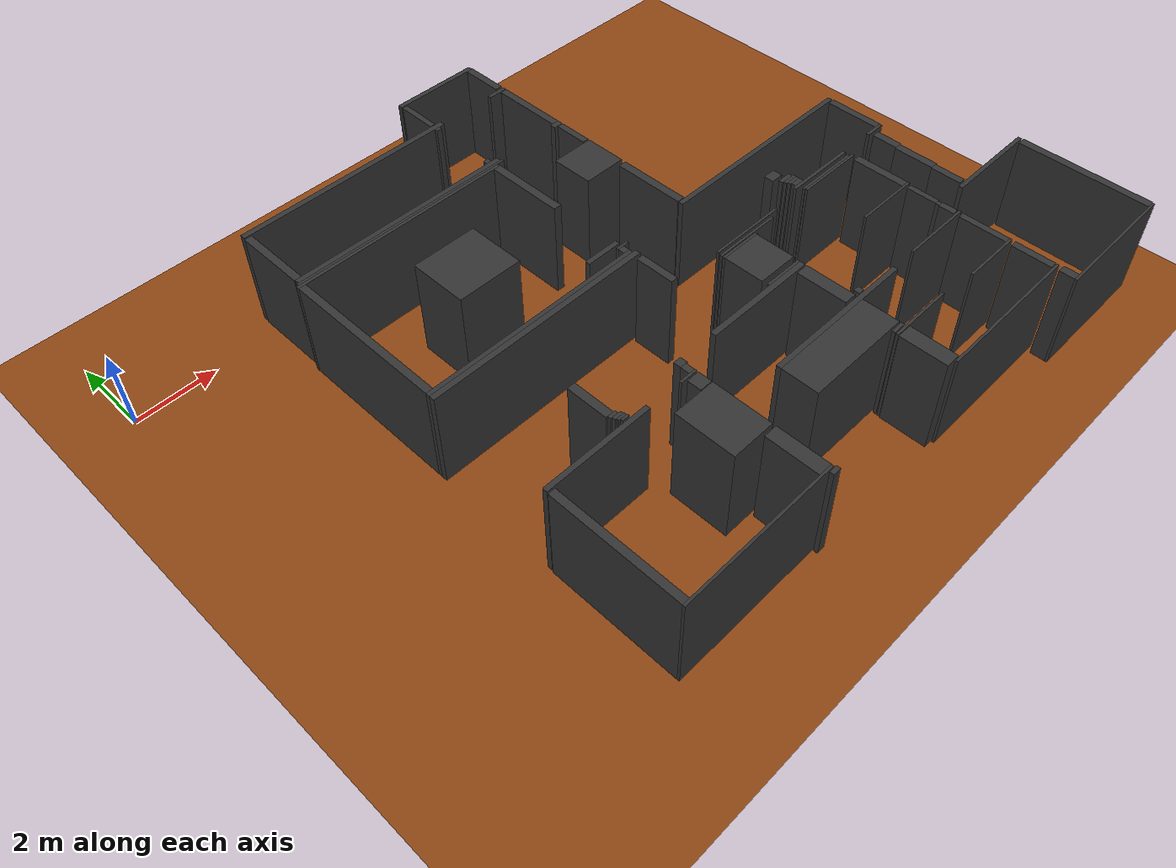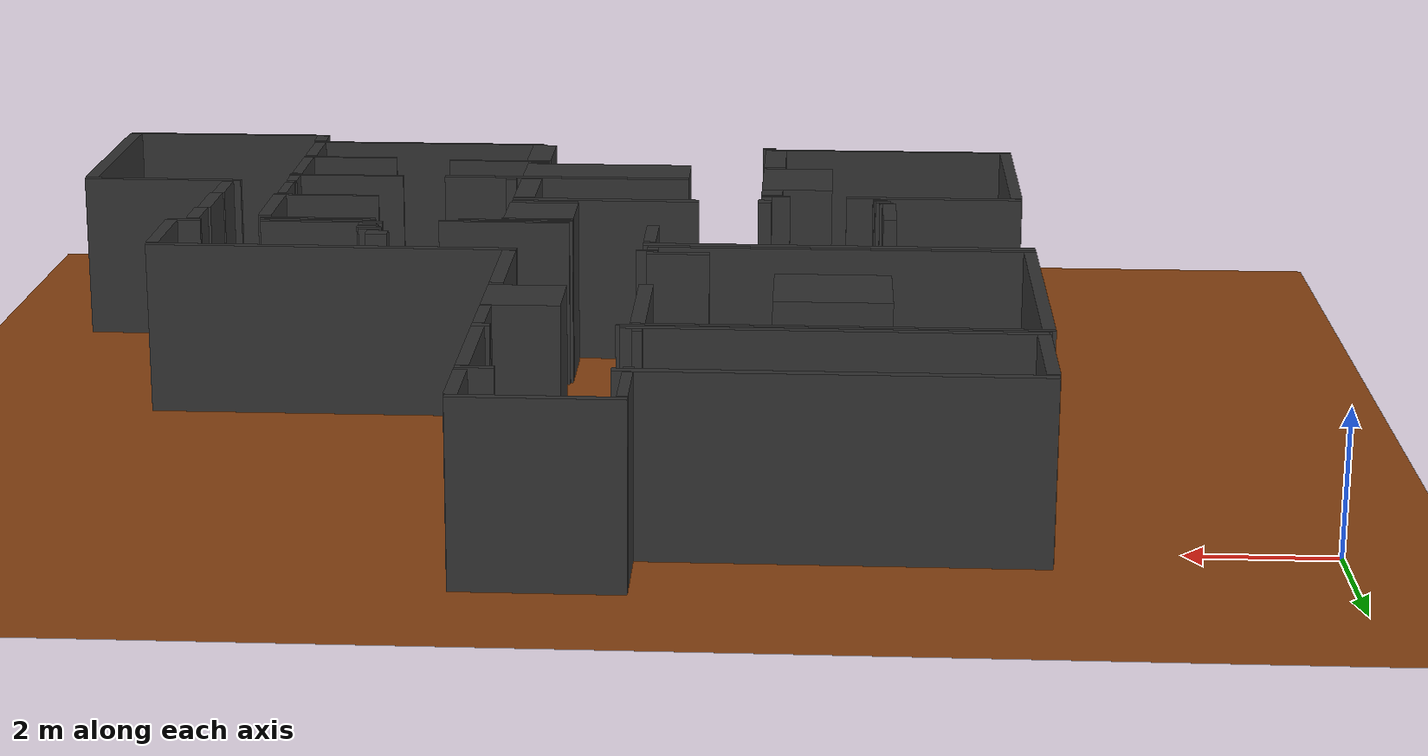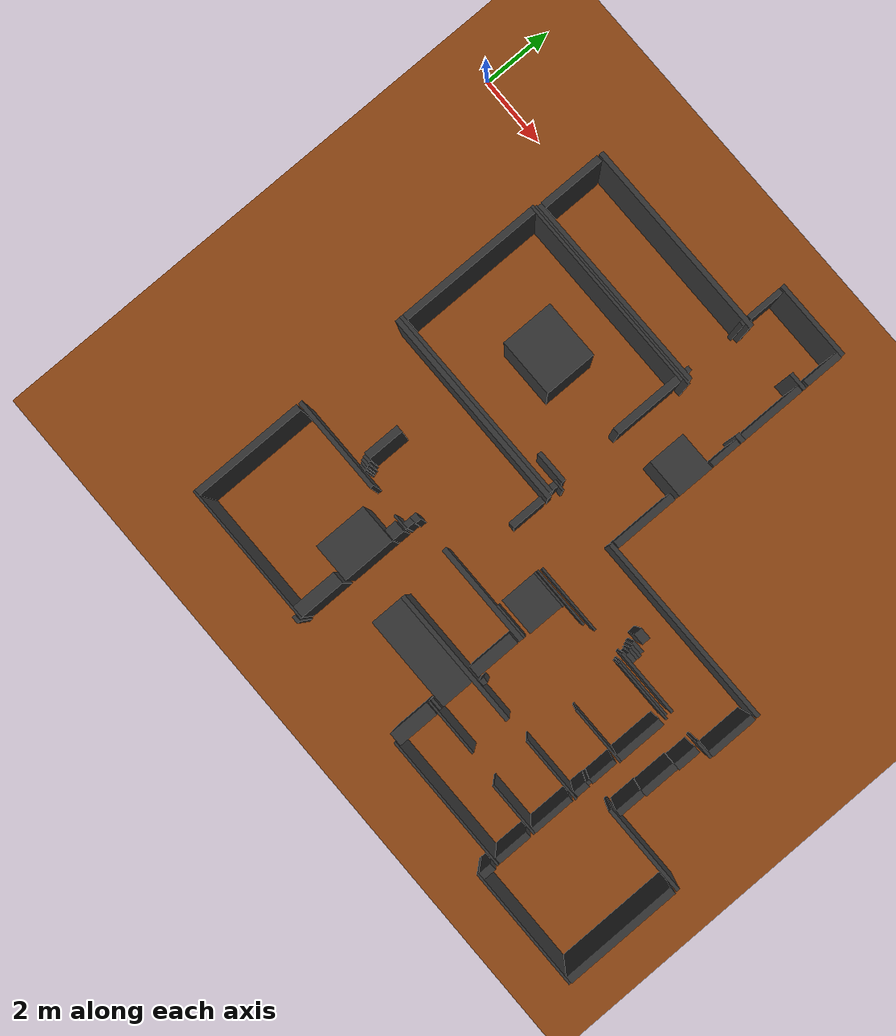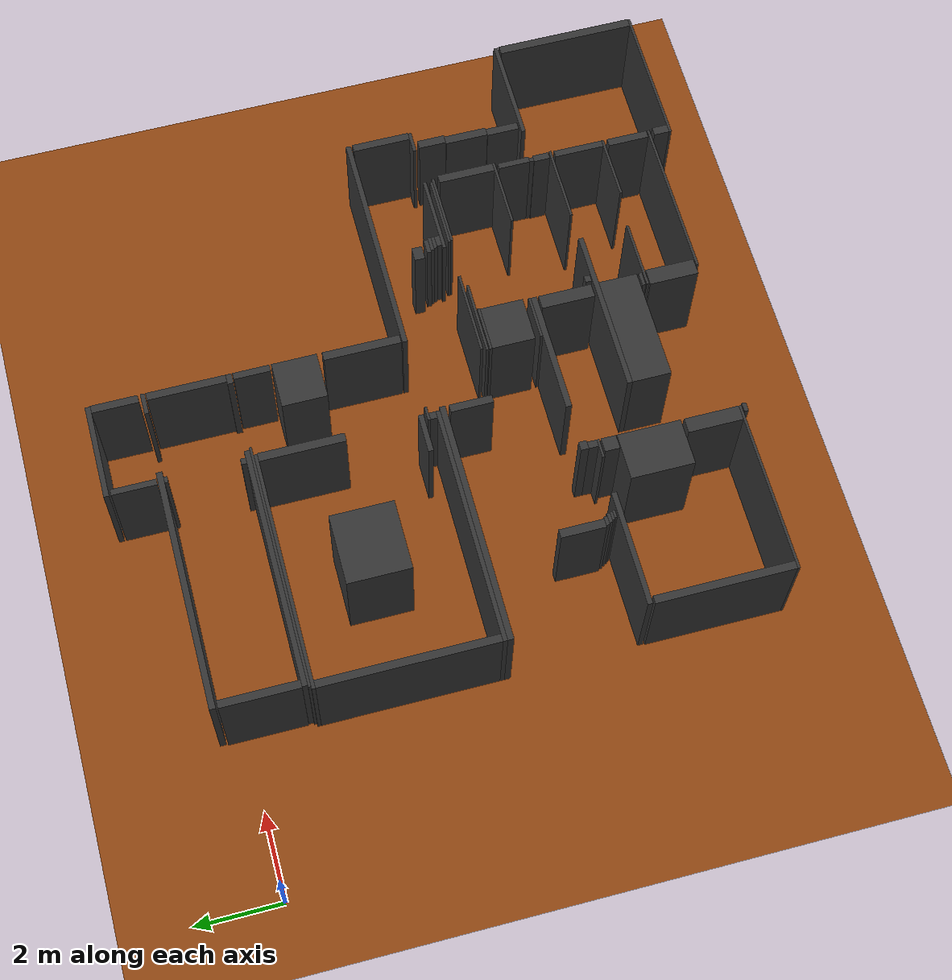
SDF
<sdf version="1.8">
 <world name="floorplan_world">
  <gravity>0 0 -9.8</gravity>
  <scene><ambient>0.4 0.4 0.4 1</ambient><background>0.7 0.7 0.7 1</background></scene>
  <model name="ground_plane">
   <static>true</static>
   <link name="link">
    <collision name="collision">
     <geometry><plane><normal>0 0 1</normal><size>100 100</size></plane></geometry>
    </collision>
    <visual name="visual">
     <geometry><plane><normal>0 0 1</normal><size>100 100</size></plane></geometry>
     <material>
      <ambient>0.4 0.26 0.13 1</ambient>
      <diffuse>0.55 0.27 0.07 1</diffuse>
      <specular>0.1 0.1 0.1 1</specular>
     </material>
    </visual>
   </link>
  </model>
  <model name="wall_9_599">
   <static>true</static>
   <pose>10.0400 1.7500 1.2500 0 0 0.000000</pose>
   <link name="link">
    <collision name="collision"><geometry><box><size>2.2200 0.1200 2.5000</size></box></geometry></collision>
    <visual name="visual">
     <geometry><box><size>2.2200 0.1200 2.5000</size></box></geometry>
     <material><ambient>0.2 0.2 0.2 1.0</ambient></material>
    </visual>
   </link>
  </model>
  <model name="wall_17_599">
   <static>true</static>
   <pose>9.0000 1.1400 1.2500 0 0 0.000000</pose>
   <link name="link">
    <collision name="collision"><geometry><box><size>0.1400 1.0200 2.5000</size></box></geometry></collision>
    <visual name="visual">
     <geometry><box><size>0.1400 1.0200 2.5000</size></box></geometry>
     <material><ambient>0.2 0.2 0.2 1.0</ambient></material>
    </visual>
   </link>
  </model>
  <model name="wall_15_702">
   <static>true</static>
   <pose>11.0800 1.1600 1.2500 0 0 0.000000</pose>
   <link name="link">
    <collision name="collision"><geometry><box><size>0.1800 1.0600 2.5000</size></box></geometry></collision>
    <visual name="visual">
     <geometry><box><size>0.1800 1.0600 2.5000</size></box></geometry>
     <material><ambient>0.2 0.2 0.2 1.0</ambient></material>
    </visual>
   </link>
  </model>
  <model name="wall_69_336">
   <static>true</static>
   <pose>6.4400 0.5400 1.2500 0 0 0.000000</pose>
   <link name="link">
    <collision name="collision"><geometry><box><size>5.5400 0.1400 2.5000</size></box></geometry></collision>
    <visual name="visual">
     <geometry><box><size>5.5400 0.1400 2.5000</size></box></geometry>
     <material><ambient>0.2 0.2 0.2 1.0</ambient></material>
    </visual>
   </link>
  </model>
  <model name="wall_71_686">
   <static>true</static>
   <pose>10.9200 0.5200 1.2500 0 0 0.000000</pose>
   <link name="link">
    <collision name="collision"><geometry><box><size>0.5000 0.1000 2.5000</size></box></geometry></collision>
    <visual name="visual">
     <geometry><box><size>0.5000 0.1000 2.5000</size></box></geometry>
     <material><ambient>0.2 0.2 0.2 1.0</ambient></material>
    </visual>
   </link>
  </model>
  <model name="wall_76_599">
   <static>true</static>
   <pose>9.0000 0.4300 1.2500 0 0 0.000000</pose>
   <link name="link">
    <collision name="collision"><geometry><box><size>0.1400 0.0800 2.5000</size></box></geometry></collision>
    <visual name="visual">
     <geometry><box><size>0.1400 0.0800 2.5000</size></box></geometry>
     <material><ambient>0.2 0.2 0.2 1.0</ambient></material>
    </visual>
   </link>
  </model>
  <model name="wall_78_335">
   <static>true</static>
   <pose>3.7400 -0.4600 1.2500 0 0 0.000000</pose>
   <link name="link">
    <collision name="collision"><geometry><box><size>0.1800 1.7800 2.5000</size></box></geometry></collision>
    <visual name="visual">
     <geometry><box><size>0.1800 1.7800 2.5000</size></box></geometry>
     <material><ambient>0.2 0.2 0.2 1.0</ambient></material>
    </visual>
   </link>
  </model>
  <model name="wall_161_599">
   <static>true</static>
   <pose>9.0000 -1.2900 1.2500 0 0 0.000000</pose>
   <link name="link">
    <collision name="collision"><geometry><box><size>0.1400 0.1200 2.5000</size></box></geometry></collision>
    <visual name="visual">
     <geometry><box><size>0.1400 0.1200 2.5000</size></box></geometry>
     <material><ambient>0.2 0.2 0.2 1.0</ambient></material>
    </visual>
   </link>
  </model>
  <model name="wall_77_702">
   <static>true</static>
   <pose>11.0800 -0.4500 1.2500 0 0 0.000000</pose>
   <link name="link">
    <collision name="collision"><geometry><box><size>0.1800 1.8000 2.5000</size></box></geometry></collision>
    <visual name="visual">
     <geometry><box><size>0.1800 1.8000 2.5000</size></box></geometry>
     <material><ambient>0.2 0.2 0.2 1.0</ambient></material>
    </visual>
   </link>
  </model>
  <model name="wall_167_336">
   <static>true</static>
   <pose>6.4500 -1.4100 1.2500 0 0 0.000000</pose>
   <link name="link">
    <collision name="collision"><geometry><box><size>5.5600 0.1200 2.5000</size></box></geometry></collision>
    <visual name="visual">
     <geometry><box><size>5.5600 0.1200 2.5000</size></box></geometry>
     <material><ambient>0.2 0.2 0.2 1.0</ambient></material>
    </visual>
   </link>
  </model>
  <model name="wall_167_699">
   <static>true</static>
   <pose>11.0500 -1.4200 1.2500 0 0 0.000000</pose>
   <link name="link">
    <collision name="collision"><geometry><box><size>0.2400 0.1400 2.5000</size></box></geometry></collision>
    <visual name="visual">
     <geometry><box><size>0.2400 0.1400 2.5000</size></box></geometry>
     <material><ambient>0.2 0.2 0.2 1.0</ambient></material>
    </visual>
   </link>
  </model>
  <model name="wall_173_334">
   <static>true</static>
   <pose>6.4600 -1.5000 1.2500 0 0 0.000000</pose>
   <link name="link">
    <collision name="collision"><geometry><box><size>5.6600 0.0600 2.5000</size></box></geometry></collision>
    <visual name="visual">
     <geometry><box><size>5.6600 0.0600 2.5000</size></box></geometry>
     <material><ambient>0.2 0.2 0.2 1.0</ambient></material>
    </visual>
   </link>
  </model>
  <model name="wall_176_331">
   <static>true</static>
   <pose>6.3300 -1.5700 1.2500 0 0 0.000000</pose>
   <link name="link">
    <collision name="collision"><geometry><box><size>5.5200 0.0800 2.5000</size></box></geometry></collision>
    <visual name="visual">
     <geometry><box><size>5.5200 0.0800 2.5000</size></box></geometry>
     <material><ambient>0.2 0.2 0.2 1.0</ambient></material>
    </visual>
   </link>
  </model>
  <model name="wall_175_703">
   <static>true</static>
   <pose>11.0900 -1.9300 1.2500 0 0 0.000000</pose>
   <link name="link">
    <collision name="collision"><geometry><box><size>0.1600 0.8400 2.5000</size></box></geometry></collision>
    <visual name="visual">
     <geometry><box><size>0.1600 0.8400 2.5000</size></box></geometry>
     <material><ambient>0.2 0.2 0.2 1.0</ambient></material>
    </visual>
   </link>
  </model>
  <model name="wall_219_657">
   <static>true</static>
   <pose>10.6300 -2.9100 1.2500 0 0 0.000000</pose>
   <link name="link">
    <collision name="collision"><geometry><box><size>1.0800 1.0400 2.5000</size></box></geometry></collision>
    <visual name="visual">
     <geometry><box><size>1.0800 1.0400 2.5000</size></box></geometry>
     <material><ambient>0.2 0.2 0.2 1.0</ambient></material>
    </visual>
   </link>
  </model>
  <model name="wall_180_598">
   <static>true</static>
   <pose>9.0100 -2.5900 1.2500 0 0 0.000000</pose>
   <link name="link">
    <collision name="collision"><geometry><box><size>0.2000 1.9600 2.5000</size></box></geometry></collision>
    <visual name="visual">
     <geometry><box><size>0.2000 1.9600 2.5000</size></box></geometry>
     <material><ambient>0.2 0.2 0.2 1.0</ambient></material>
    </visual>
   </link>
  </model>
  <model name="wall_238_435">
   <static>true</static>
   <pose>6.4600 -3.5000 1.2500 0 0 0.000000</pose>
   <link name="link">
    <collision name="collision"><geometry><box><size>1.6200 1.4600 2.5000</size></box></geometry></collision>
    <visual name="visual">
     <geometry><box><size>1.6200 1.4600 2.5000</size></box></geometry>
     <material><ambient>0.2 0.2 0.2 1.0</ambient></material>
    </visual>
   </link>
  </model>
  <model name="wall_277_701">
   <static>true</static>
   <pose>11.0700 -4.4400 1.2500 0 0 0.000000</pose>
   <link name="link">
    <collision name="collision"><geometry><box><size>0.2000 1.7800 2.5000</size></box></geometry></collision>
    <visual name="visual">
     <geometry><box><size>0.2000 1.7800 2.5000</size></box></geometry>
     <material><ambient>0.2 0.2 0.2 1.0</ambient></material>
    </visual>
   </link>
  </model>
  <model name="wall_361_563">
   <static>true</static>
   <pose>8.6600 -5.2900 1.2500 0 0 0.000000</pose>
   <link name="link">
    <collision name="collision"><geometry><box><size>0.9000 0.1200 2.5000</size></box></geometry></collision>
    <visual name="visual">
     <geometry><box><size>0.9000 0.1200 2.5000</size></box></geometry>
     <material><ambient>0.2 0.2 0.2 1.0</ambient></material>
    </visual>
   </link>
  </model>
  <model name="wall_370_600">
   <static>true</static>
   <pose>9.1100 -5.4400 1.2500 0 0 0.000000</pose>
   <link name="link">
    <collision name="collision"><geometry><box><size>0.3200 0.0600 2.5000</size></box></geometry></collision>
    <visual name="visual">
     <geometry><box><size>0.3200 0.0600 2.5000</size></box></geometry>
     <material><ambient>0.2 0.2 0.2 1.0</ambient></material>
    </visual>
   </link>
  </model>
  <model name="wall_367_701">
   <static>true</static>
   <pose>13.6500 -5.4100 1.2500 0 0 0.000000</pose>
   <link name="link">
    <collision name="collision"><geometry><box><size>5.3600 0.1200 2.5000</size></box></geometry></collision>
    <visual name="visual">
     <geometry><box><size>5.3600 0.1200 2.5000</size></box></geometry>
     <material><ambient>0.2 0.2 0.2 1.0</ambient></material>
    </visual>
   </link>
  </model>
  <model name="wall_180_331">
   <static>true</static>
   <pose>3.6600 -3.6200 1.2500 0 0 0.000000</pose>
   <link name="link">
    <collision name="collision"><geometry><box><size>0.1800 4.0200 2.5000</size></box></geometry></collision>
    <visual name="visual">
     <geometry><box><size>0.1800 4.0200 2.5000</size></box></geometry>
     <material><ambient>0.2 0.2 0.2 1.0</ambient></material>
    </visual>
   </link>
  </model>
  <model name="wall_373_600">
   <static>true</static>
   <pose>9.0300 -5.5500 1.2500 0 0 0.000000</pose>
   <link name="link">
    <collision name="collision"><geometry><box><size>0.1600 0.1600 2.5000</size></box></geometry></collision>
    <visual name="visual">
     <geometry><box><size>0.1600 0.1600 2.5000</size></box></geometry>
     <material><ambient>0.2 0.2 0.2 1.0</ambient></material>
    </visual>
   </link>
  </model>
  <model name="wall_381_331">
   <static>true</static>
   <pose>6.3400 -5.6800 1.2500 0 0 0.000000</pose>
   <link name="link">
    <collision name="collision"><geometry><box><size>5.5400 0.1000 2.5000</size></box></geometry></collision>
    <visual name="visual">
     <geometry><box><size>5.5400 0.1000 2.5000</size></box></geometry>
     <material><ambient>0.2 0.2 0.2 1.0</ambient></material>
    </visual>
   </link>
  </model>
  <model name="wall_386_331">
   <static>true</static>
   <pose>6.3800 -5.8000 1.2500 0 0 0.000000</pose>
   <link name="link">
    <collision name="collision"><geometry><box><size>5.6200 0.1400 2.5000</size></box></geometry></collision>
    <visual name="visual">
     <geometry><box><size>5.6200 0.1400 2.5000</size></box></geometry>
     <material><ambient>0.2 0.2 0.2 1.0</ambient></material>
    </visual>
   </link>
  </model>
  <model name="wall_407_800">
   <static>true</static>
   <pose>13.1100 -6.2700 1.2500 0 0 0.000000</pose>
   <link name="link">
    <collision name="collision"><geometry><box><size>0.3200 0.2400 2.5000</size></box></geometry></collision>
    <visual name="visual">
     <geometry><box><size>0.3200 0.2400 2.5000</size></box></geometry>
     <material><ambient>0.2 0.2 0.2 1.0</ambient></material>
    </visual>
   </link>
  </model>
  <model name="wall_423_806">
   <static>true</static>
   <pose>13.2400 -6.5200 1.2500 0 0 0.000000</pose>
   <link name="link">
    <collision name="collision"><geometry><box><size>0.3400 0.1000 2.5000</size></box></geometry></collision>
    <visual name="visual">
     <geometry><box><size>0.3400 0.1000 2.5000</size></box></geometry>
     <material><ambient>0.2 0.2 0.2 1.0</ambient></material>
    </visual>
   </link>
  </model>
  <model name="wall_428_808">
   <static>true</static>
   <pose>13.2800 -6.6100 1.2500 0 0 0.000000</pose>
   <link name="link">
    <collision name="collision"><geometry><box><size>0.3400 0.0800 2.5000</size></box></geometry></collision>
    <visual name="visual">
     <geometry><box><size>0.3400 0.0800 2.5000</size></box></geometry>
     <material><ambient>0.2 0.2 0.2 1.0</ambient></material>
    </visual>
   </link>
  </model>
  <model name="wall_432_810">
   <static>true</static>
   <pose>13.3000 -6.6900 1.2500 0 0 0.000000</pose>
   <link name="link">
    <collision name="collision"><geometry><box><size>0.3000 0.0800 2.5000</size></box></geometry></collision>
    <visual name="visual">
     <geometry><box><size>0.3000 0.0800 2.5000</size></box></geometry>
     <material><ambient>0.2 0.2 0.2 1.0</ambient></material>
    </visual>
   </link>
  </model>
  <model name="wall_436_812">
   <static>true</static>
   <pose>13.3200 -6.7900 1.2500 0 0 0.000000</pose>
   <link name="link">
    <collision name="collision"><geometry><box><size>0.2600 0.1200 2.5000</size></box></geometry></collision>
    <visual name="visual">
     <geometry><box><size>0.2600 0.1200 2.5000</size></box></geometry>
     <material><ambient>0.2 0.2 0.2 1.0</ambient></material>
    </visual>
   </link>
  </model>
  <model name="wall_375_961">
   <static>true</static>
   <pose>16.2600 -6.1800 1.2500 0 0 0.000000</pose>
   <link name="link">
    <collision name="collision"><geometry><box><size>0.1800 1.3400 2.5000</size></box></geometry></collision>
    <visual name="visual">
     <geometry><box><size>0.1800 1.3400 2.5000</size></box></geometry>
     <material><ambient>0.2 0.2 0.2 1.0</ambient></material>
    </visual>
   </link>
  </model>
  <model name="wall_397_603">
   <static>true</static>
   <pose>9.1000 -6.4400 1.2500 0 0 0.000000</pose>
   <link name="link">
    <collision name="collision"><geometry><box><size>0.1800 0.9800 2.5000</size></box></geometry></collision>
    <visual name="visual">
     <geometry><box><size>0.1800 0.9800 2.5000</size></box></geometry>
     <material><ambient>0.2 0.2 0.2 1.0</ambient></material>
    </visual>
   </link>
  </model>
  <model name="wall_442_808">
   <static>true</static>
   <pose>14.0200 -6.8900 1.2500 0 0 0.000000</pose>
   <link name="link">
    <collision name="collision"><geometry><box><size>1.8200 0.0800 2.5000</size></box></geometry></collision>
    <visual name="visual">
     <geometry><box><size>1.8200 0.0800 2.5000</size></box></geometry>
     <material><ambient>0.2 0.2 0.2 1.0</ambient></material>
    </visual>
   </link>
  </model>
  <model name="wall_442_944">
   <static>true</static>
   <pose>16.0800 -6.8900 1.2500 0 0 0.000000</pose>
   <link name="link">
    <collision name="collision"><geometry><box><size>0.5000 0.0800 2.5000</size></box></geometry></collision>
    <visual name="visual">
     <geometry><box><size>0.5000 0.0800 2.5000</size></box></geometry>
     <material><ambient>0.2 0.2 0.2 1.0</ambient></material>
    </visual>
   </link>
  </model>
  <model name="wall_449_670">
   <static>true</static>
   <pose>11.3200 -7.0200 1.2500 0 0 0.000000</pose>
   <link name="link">
    <collision name="collision"><geometry><box><size>1.9400 0.0600 2.5000</size></box></geometry></collision>
    <visual name="visual">
     <geometry><box><size>1.9400 0.0600 2.5000</size></box></geometry>
     <material><ambient>0.2 0.2 0.2 1.0</ambient></material>
    </visual>
   </link>
  </model>
  <model name="wall_450_814">
   <static>true</static>
   <pose>14.0600 -7.0400 1.2500 0 0 0.000000</pose>
   <link name="link">
    <collision name="collision"><geometry><box><size>1.6600 0.0600 2.5000</size></box></geometry></collision>
    <visual name="visual">
     <geometry><box><size>1.6600 0.0600 2.5000</size></box></geometry>
     <material><ambient>0.2 0.2 0.2 1.0</ambient></material>
    </visual>
   </link>
  </model>
  <model name="wall_453_815">
   <static>true</static>
   <pose>14.1100 -7.1000 1.2500 0 0 0.000000</pose>
   <link name="link">
    <collision name="collision"><geometry><box><size>1.7200 0.0600 2.5000</size></box></geometry></collision>
    <visual name="visual">
     <geometry><box><size>1.7200 0.0600 2.5000</size></box></geometry>
     <material><ambient>0.2 0.2 0.2 1.0</ambient></material>
    </visual>
   </link>
  </model>
  <model name="wall_455_668">
   <static>true</static>
   <pose>11.1600 -7.1400 1.2500 0 0 0.000000</pose>
   <link name="link">
    <collision name="collision"><geometry><box><size>1.7000 0.0600 2.5000</size></box></geometry></collision>
    <visual name="visual">
     <geometry><box><size>1.7000 0.0600 2.5000</size></box></geometry>
     <material><ambient>0.2 0.2 0.2 1.0</ambient></material>
    </visual>
   </link>
  </model>
  <model name="wall_459_668">
   <static>true</static>
   <pose>10.8400 -7.2200 1.2500 0 0 0.000000</pose>
   <link name="link">
    <collision name="collision"><geometry><box><size>1.0600 0.0600 2.5000</size></box></geometry></collision>
    <visual name="visual">
     <geometry><box><size>1.0600 0.0600 2.5000</size></box></geometry>
     <material><ambient>0.2 0.2 0.2 1.0</ambient></material>
    </visual>
   </link>
  </model>
  <model name="wall_450_946">
   <static>true</static>
   <pose>15.9700 -7.3300 1.2500 0 0 0.000000</pose>
   <link name="link">
    <collision name="collision"><geometry><box><size>0.2000 0.6400 2.5000</size></box></geometry></collision>
    <visual name="visual">
     <geometry><box><size>0.2000 0.6400 2.5000</size></box></geometry>
     <material><ambient>0.2 0.2 0.2 1.0</ambient></material>
    </visual>
   </link>
  </model>
  <model name="wall_462_668">
   <static>true</static>
   <pose>10.8300 -7.7500 1.2500 0 0 0.000000</pose>
   <link name="link">
    <collision name="collision"><geometry><box><size>1.0400 1.0000 2.5000</size></box></geometry></collision>
    <visual name="visual">
     <geometry><box><size>1.0400 1.0000 2.5000</size></box></geometry>
     <material><ambient>0.2 0.2 0.2 1.0</ambient></material>
    </visual>
   </link>
  </model>
  <model name="wall_518_669">
   <static>true</static>
   <pose>10.8300 -8.4000 1.2500 0 0 0.000000</pose>
   <link name="link">
    <collision name="collision"><geometry><box><size>1.0000 0.0600 2.5000</size></box></geometry></collision>
    <visual name="visual">
     <geometry><box><size>1.0000 0.0600 2.5000</size></box></geometry>
     <material><ambient>0.2 0.2 0.2 1.0</ambient></material>
    </visual>
   </link>
  </model>
  <model name="wall_472_428">
   <static>true</static>
   <pose>5.6100 -7.9600 1.2500 0 0 0.000000</pose>
   <link name="link">
    <collision name="collision"><geometry><box><size>0.2000 1.0200 2.5000</size></box></geometry></collision>
    <visual name="visual">
     <geometry><box><size>0.2000 1.0200 2.5000</size></box></geometry>
     <material><ambient>0.2 0.2 0.2 1.0</ambient></material>
    </visual>
   </link>
  </model>
  <model name="wall_523_430">
   <static>true</static>
   <pose>5.6500 -8.5100 1.2500 0 0 0.000000</pose>
   <link name="link">
    <collision name="collision"><geometry><box><size>0.2000 0.0800 2.5000</size></box></geometry></collision>
    <visual name="visual">
     <geometry><box><size>0.2000 0.0800 2.5000</size></box></geometry>
     <material><ambient>0.2 0.2 0.2 1.0</ambient></material>
    </visual>
   </link>
  </model>
  <model name="wall_461_894">
   <static>true</static>
   <pose>14.9300 -7.8900 1.2500 0 0 0.000000</pose>
   <link name="link">
    <collision name="collision"><geometry><box><size>0.2000 1.3200 2.5000</size></box></geometry></collision>
    <visual name="visual">
     <geometry><box><size>0.2000 1.3200 2.5000</size></box></geometry>
     <material><ambient>0.2 0.2 0.2 1.0</ambient></material>
    </visual>
   </link>
  </model>
  <model name="wall_521_577">
   <static>true</static>
   <pose>9.9100 -8.5000 1.2500 0 0 0.000000</pose>
   <link name="link">
    <collision name="collision"><geometry><box><size>2.8400 0.1400 2.5000</size></box></geometry></collision>
    <visual name="visual">
     <geometry><box><size>2.8400 0.1400 2.5000</size></box></geometry>
     <material><ambient>0.2 0.2 0.2 1.0</ambient></material>
    </visual>
   </link>
  </model>
  <model name="wall_527_823">
   <static>true</static>
   <pose>14.2200 -8.5800 1.2500 0 0 0.000000</pose>
   <link name="link">
    <collision name="collision"><geometry><box><size>1.6200 0.0600 2.5000</size></box></geometry></collision>
    <visual name="visual">
     <geometry><box><size>1.6200 0.0600 2.5000</size></box></geometry>
     <material><ambient>0.2 0.2 0.2 1.0</ambient></material>
    </visual>
   </link>
  </model>
  <model name="wall_527_432">
   <static>true</static>
   <pose>5.7000 -8.5900 1.2500 0 0 0.000000</pose>
   <link name="link">
    <collision name="collision"><geometry><box><size>0.2200 0.0800 2.5000</size></box></geometry></collision>
    <visual name="visual">
     <geometry><box><size>0.2200 0.0800 2.5000</size></box></geometry>
     <material><ambient>0.2 0.2 0.2 1.0</ambient></material>
    </visual>
   </link>
  </model>
  <model name="wall_522_522">
   <static>true</static>
   <pose>7.4900 -8.5400 1.2500 0 0 0.000000</pose>
   <link name="link">
    <collision name="collision"><geometry><box><size>0.2000 0.1800 2.5000</size></box></geometry></collision>
    <visual name="visual">
     <geometry><box><size>0.2000 0.1800 2.5000</size></box></geometry>
     <material><ambient>0.2 0.2 0.2 1.0</ambient></material>
    </visual>
   </link>
  </model>
  <model name="wall_482_944">
   <static>true</static>
   <pose>15.9300 -8.1500 1.2500 0 0 0.000000</pose>
   <link name="link">
    <collision name="collision"><geometry><box><size>0.2000 1.0000 2.5000</size></box></geometry></collision>
    <visual name="visual">
     <geometry><box><size>0.2000 1.0000 2.5000</size></box></geometry>
     <material><ambient>0.2 0.2 0.2 1.0</ambient></material>
    </visual>
   </link>
  </model>
  <model name="wall_531_434">
   <static>true</static>
   <pose>5.7300 -8.6600 1.2500 0 0 0.000000</pose>
   <link name="link">
    <collision name="collision"><geometry><box><size>0.2000 0.0600 2.5000</size></box></geometry></collision>
    <visual name="visual">
     <geometry><box><size>0.2000 0.0600 2.5000</size></box></geometry>
     <material><ambient>0.2 0.2 0.2 1.0</ambient></material>
    </visual>
   </link>
  </model>
  <model name="wall_534_436">
   <static>true</static>
   <pose>5.7600 -8.7200 1.2500 0 0 0.000000</pose>
   <link name="link">
    <collision name="collision"><geometry><box><size>0.1800 0.0600 2.5000</size></box></geometry></collision>
    <visual name="visual">
     <geometry><box><size>0.1800 0.0600 2.5000</size></box></geometry>
     <material><ambient>0.2 0.2 0.2 1.0</ambient></material>
    </visual>
   </link>
  </model>
  <model name="wall_531_522">
   <static>true</static>
   <pose>7.4700 -8.7400 1.2500 0 0 0.000000</pose>
   <link name="link">
    <collision name="collision"><geometry><box><size>0.1600 0.2200 2.5000</size></box></geometry></collision>
    <visual name="visual">
     <geometry><box><size>0.1600 0.2200 2.5000</size></box></geometry>
     <material><ambient>0.2 0.2 0.2 1.0</ambient></material>
    </visual>
   </link>
  </model>
  <model name="wall_539_332">
   <static>true</static>
   <pose>4.9200 -8.8500 1.2500 0 0 0.000000</pose>
   <link name="link">
    <collision name="collision"><geometry><box><size>2.6600 0.1200 2.5000</size></box></geometry></collision>
    <visual name="visual">
     <geometry><box><size>2.6600 0.1200 2.5000</size></box></geometry>
     <material><ambient>0.2 0.2 0.2 1.0</ambient></material>
    </visual>
   </link>
  </model>
  <model name="wall_542_508">
   <static>true</static>
   <pose>7.3300 -8.8800 1.2500 0 0 0.000000</pose>
   <link name="link">
    <collision name="collision"><geometry><box><size>0.4400 0.0600 2.5000</size></box></geometry></collision>
    <visual name="visual">
     <geometry><box><size>0.4400 0.0600 2.5000</size></box></geometry>
     <material><ambient>0.2 0.2 0.2 1.0</ambient></material>
    </visual>
   </link>
  </model>
  <model name="wall_547_514">
   <static>true</static>
   <pose>7.3900 -9.1200 1.2500 0 0 0.000000</pose>
   <link name="link">
    <collision name="collision"><geometry><box><size>0.3200 0.3400 2.5000</size></box></geometry></collision>
    <visual name="visual">
     <geometry><box><size>0.3200 0.3400 2.5000</size></box></geometry>
     <material><ambient>0.2 0.2 0.2 1.0</ambient></material>
    </visual>
   </link>
  </model>
  <model name="wall_533_895">
   <static>true</static>
   <pose>14.9200 -9.0400 1.2500 0 0 0.000000</pose>
   <link name="link">
    <collision name="collision"><geometry><box><size>0.1400 0.7400 2.5000</size></box></geometry></collision>
    <visual name="visual">
     <geometry><box><size>0.1400 0.7400 2.5000</size></box></geometry>
     <material><ambient>0.2 0.2 0.2 1.0</ambient></material>
    </visual>
   </link>
  </model>
  <model name="wall_532_943">
   <static>true</static>
   <pose>15.9000 -9.0300 1.2500 0 0 0.000000</pose>
   <link name="link">
    <collision name="collision"><geometry><box><size>0.1800 0.7600 2.5000</size></box></geometry></collision>
    <visual name="visual">
     <geometry><box><size>0.1800 0.7600 2.5000</size></box></geometry>
     <material><ambient>0.2 0.2 0.2 1.0</ambient></material>
    </visual>
   </link>
  </model>
  <model name="wall_570_895">
   <static>true</static>
   <pose>14.9000 -9.4600 1.2500 0 0 0.000000</pose>
   <link name="link">
    <collision name="collision"><geometry><box><size>0.1000 0.1000 2.5000</size></box></geometry></collision>
    <visual name="visual">
     <geometry><box><size>0.1000 0.1000 2.5000</size></box></geometry>
     <material><ambient>0.2 0.2 0.2 1.0</ambient></material>
    </visual>
   </link>
  </model>
  <model name="wall_572_938">
   <static>true</static>
   <pose>16.9400 -9.5000 1.2500 0 0 0.000000</pose>
   <link name="link">
    <collision name="collision"><geometry><box><size>2.4600 0.1000 2.5000</size></box></geometry></collision>
    <visual name="visual">
     <geometry><box><size>2.4600 0.1000 2.5000</size></box></geometry>
     <material><ambient>0.2 0.2 0.2 1.0</ambient></material>
    </visual>
   </link>
  </model>
  <model name="wall_530_703">
   <static>true</static>
   <pose>11.1700 -9.2300 1.2500 0 0 0.000000</pose>
   <link name="link">
    <collision name="collision"><geometry><box><size>0.3200 1.2400 2.5000</size></box></geometry></collision>
    <visual name="visual">
     <geometry><box><size>0.3200 1.2400 2.5000</size></box></geometry>
     <material><ambient>0.2 0.2 0.2 1.0</ambient></material>
    </visual>
   </link>
  </model>
  <model name="wall_587_723">
   <static>true</static>
   <pose>11.4900 -9.8200 1.2500 0 0 0.000000</pose>
   <link name="link">
    <collision name="collision"><geometry><box><size>0.1600 0.1400 2.5000</size></box></geometry></collision>
    <visual name="visual">
     <geometry><box><size>0.1600 0.1400 2.5000</size></box></geometry>
     <material><ambient>0.2 0.2 0.2 1.0</ambient></material>
    </visual>
   </link>
  </model>
  <model name="wall_575_894">
   <static>true</static>
   <pose>14.9100 -9.7000 1.2500 0 0 0.000000</pose>
   <link name="link">
    <collision name="collision"><geometry><box><size>0.1600 0.3800 2.5000</size></box></geometry></collision>
    <visual name="visual">
     <geometry><box><size>0.1600 0.3800 2.5000</size></box></geometry>
     <material><ambient>0.2 0.2 0.2 1.0</ambient></material>
    </visual>
   </link>
  </model>
  <model name="wall_595_813">
   <static>true</static>
   <pose>14.1100 -9.9400 1.2500 0 0 0.000000</pose>
   <link name="link">
    <collision name="collision"><geometry><box><size>1.8000 0.0600 2.5000</size></box></geometry></collision>
    <visual name="visual">
     <geometry><box><size>1.8000 0.0600 2.5000</size></box></geometry>
     <material><ambient>0.2 0.2 0.2 1.0</ambient></material>
    </visual>
   </link>
  </model>
  <model name="wall_595_588">
   <static>true</static>
   <pose>10.6300 -9.9700 1.2500 0 0 0.000000</pose>
   <link name="link">
    <collision name="collision"><geometry><box><size>3.8400 0.1200 2.5000</size></box></geometry></collision>
    <visual name="visual">
     <geometry><box><size>3.8400 0.1200 2.5000</size></box></geometry>
     <material><ambient>0.2 0.2 0.2 1.0</ambient></material>
    </visual>
   </link>
  </model>
  <model name="wall_565_476">
   <static>true</static>
   <pose>7.0100 -10.0400 1.2500 0 0 0.000000</pose>
   <link name="link">
    <collision name="collision"><geometry><box><size>1.0800 1.4600 2.5000</size></box></geometry></collision>
    <visual name="visual">
     <geometry><box><size>1.0800 1.4600 2.5000</size></box></geometry>
     <material><ambient>0.2 0.2 0.2 1.0</ambient></material>
    </visual>
   </link>
  </model>
  <model name="wall_601_588">
   <static>true</static>
   <pose>10.0200 -10.4800 1.2500 0 0 0.000000</pose>
   <link name="link">
    <collision name="collision"><geometry><box><size>2.6200 0.9000 2.5000</size></box></geometry></collision>
    <visual name="visual">
     <geometry><box><size>2.6200 0.9000 2.5000</size></box></geometry>
     <material><ambient>0.2 0.2 0.2 1.0</ambient></material>
    </visual>
   </link>
  </model>
  <model name="wall_648_703">
   <static>true</static>
   <pose>11.1700 -11.0100 1.2500 0 0 0.000000</pose>
   <link name="link">
    <collision name="collision"><geometry><box><size>0.3200 0.0800 2.5000</size></box></geometry></collision>
    <visual name="visual">
     <geometry><box><size>0.3200 0.0800 2.5000</size></box></geometry>
     <material><ambient>0.2 0.2 0.2 1.0</ambient></material>
    </visual>
   </link>
  </model>
  <model name="wall_653_703">
   <static>true</static>
   <pose>11.8100 -11.1000 1.2500 0 0 0.000000</pose>
   <link name="link">
    <collision name="collision"><geometry><box><size>1.6000 0.0600 2.5000</size></box></geometry></collision>
    <visual name="visual">
     <geometry><box><size>1.6000 0.0600 2.5000</size></box></geometry>
     <material><ambient>0.2 0.2 0.2 1.0</ambient></material>
    </visual>
   </link>
  </model>
  <model name="wall_601_894">
   <static>true</static>
   <pose>14.9100 -10.6100 1.2500 0 0 0.000000</pose>
   <link name="link">
    <collision name="collision"><geometry><box><size>0.1600 1.1600 2.5000</size></box></geometry></collision>
    <visual name="visual">
     <geometry><box><size>0.1600 1.1600 2.5000</size></box></geometry>
     <material><ambient>0.2 0.2 0.2 1.0</ambient></material>
    </visual>
   </link>
  </model>
  <model name="wall_659_827">
   <static>true</static>
   <pose>14.2400 -11.2200 1.2500 0 0 0.000000</pose>
   <link name="link">
    <collision name="collision"><geometry><box><size>1.5000 0.0600 2.5000</size></box></geometry></collision>
    <visual name="visual">
     <geometry><box><size>1.5000 0.0600 2.5000</size></box></geometry>
     <material><ambient>0.2 0.2 0.2 1.0</ambient></material>
    </visual>
   </link>
  </model>
  <model name="wall_547_331">
   <static>true</static>
   <pose>3.6600 -10.5300 1.2500 0 0 0.000000</pose>
   <link name="link">
    <collision name="collision"><geometry><box><size>0.1800 3.1600 2.5000</size></box></geometry></collision>
    <visual name="visual">
     <geometry><box><size>0.1800 3.1600 2.5000</size></box></geometry>
     <material><ambient>0.2 0.2 0.2 1.0</ambient></material>
    </visual>
   </link>
  </model>
  <model name="wall_642_513">
   <static>true</static>
   <pose>7.3800 -11.4800 1.2500 0 0 0.000000</pose>
   <link name="link">
    <collision name="collision"><geometry><box><size>0.3400 1.2600 2.5000</size></box></geometry></collision>
    <visual name="visual">
     <geometry><box><size>0.3400 1.2600 2.5000</size></box></geometry>
     <material><ambient>0.2 0.2 0.2 1.0</ambient></material>
    </visual>
   </link>
  </model>
  <model name="wall_705_331">
   <static>true</static>
   <pose>5.5600 -12.1400 1.2500 0 0 0.000000</pose>
   <link name="link">
    <collision name="collision"><geometry><box><size>3.9800 0.0600 2.5000</size></box></geometry></collision>
    <visual name="visual">
     <geometry><box><size>3.9800 0.0600 2.5000</size></box></geometry>
     <material><ambient>0.2 0.2 0.2 1.0</ambient></material>
    </visual>
   </link>
  </model>
  <model name="wall_709_522">
   <static>true</static>
   <pose>7.4900 -12.2400 1.2500 0 0 0.000000</pose>
   <link name="link">
    <collision name="collision"><geometry><box><size>0.2000 0.1000 2.5000</size></box></geometry></collision>
    <visual name="visual">
     <geometry><box><size>0.2000 0.1000 2.5000</size></box></geometry>
     <material><ambient>0.2 0.2 0.2 1.0</ambient></material>
    </visual>
   </link>
  </model>
  <model name="wall_657_702">
   <static>true</static>
   <pose>11.1800 -11.7200 1.2500 0 0 0.000000</pose>
   <link name="link">
    <collision name="collision"><geometry><box><size>0.3800 1.1400 2.5000</size></box></geometry></collision>
    <visual name="visual">
     <geometry><box><size>0.3800 1.1400 2.5000</size></box></geometry>
     <material><ambient>0.2 0.2 0.2 1.0</ambient></material>
    </visual>
   </link>
  </model>
  <model name="wall_666_893">
   <static>true</static>
   <pose>14.9000 -11.8100 1.2500 0 0 0.000000</pose>
   <link name="link">
    <collision name="collision"><geometry><box><size>0.1800 0.9600 2.5000</size></box></geometry></collision>
    <visual name="visual">
     <geometry><box><size>0.1800 0.9600 2.5000</size></box></geometry>
     <material><ambient>0.2 0.2 0.2 1.0</ambient></material>
    </visual>
   </link>
  </model>
  <model name="wall_715_713">
   <static>true</static>
   <pose>13.1000 -12.3400 1.2500 0 0 0.000000</pose>
   <link name="link">
    <collision name="collision"><geometry><box><size>3.7800 0.0600 2.5000</size></box></geometry></collision>
    <visual name="visual">
     <geometry><box><size>3.7800 0.0600 2.5000</size></box></geometry>
     <material><ambient>0.2 0.2 0.2 1.0</ambient></material>
    </visual>
   </link>
  </model>
  <model name="wall_722_894">
   <static>true</static>
   <pose>14.9300 -12.6300 1.2500 0 0 0.000000</pose>
   <link name="link">
    <collision name="collision"><geometry><box><size>0.2000 0.3600 2.5000</size></box></geometry></collision>
    <visual name="visual">
     <geometry><box><size>0.2000 0.3600 2.5000</size></box></geometry>
     <material><ambient>0.2 0.2 0.2 1.0</ambient></material>
    </visual>
   </link>
  </model>
  <model name="wall_579_1052">
   <static>true</static>
   <pose>18.0900 -11.2000 1.2500 0 0 0.000000</pose>
   <link name="link">
    <collision name="collision"><geometry><box><size>0.2000 3.2200 2.5000</size></box></geometry></collision>
    <visual name="visual">
     <geometry><box><size>0.2000 3.2200 2.5000</size></box></geometry>
     <material><ambient>0.2 0.2 0.2 1.0</ambient></material>
    </visual>
   </link>
  </model>
  <model name="wall_740_894">
   <static>true</static>
   <pose>16.5000 -12.8400 1.2500 0 0 0.000000</pose>
   <link name="link">
    <collision name="collision"><geometry><box><size>3.3400 0.0600 2.5000</size></box></geometry></collision>
    <visual name="visual">
     <geometry><box><size>3.3400 0.0600 2.5000</size></box></geometry>
     <material><ambient>0.2 0.2 0.2 1.0</ambient></material>
    </visual>
   </link>
  </model>
 </world>
</sdf>
